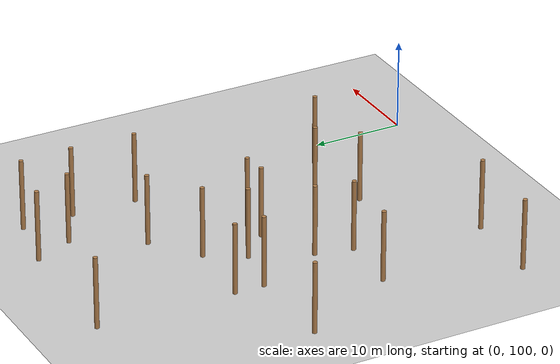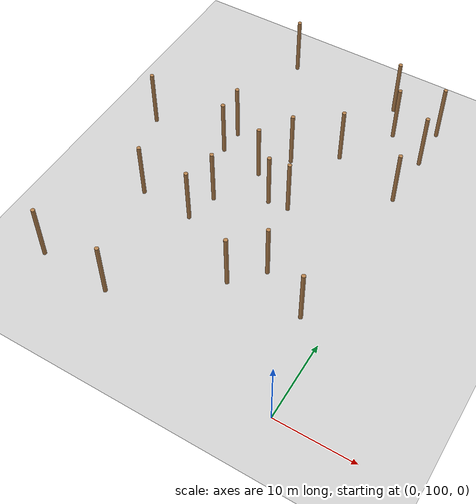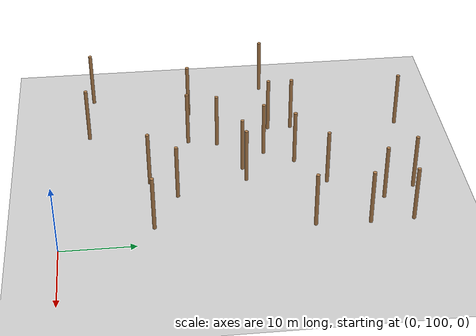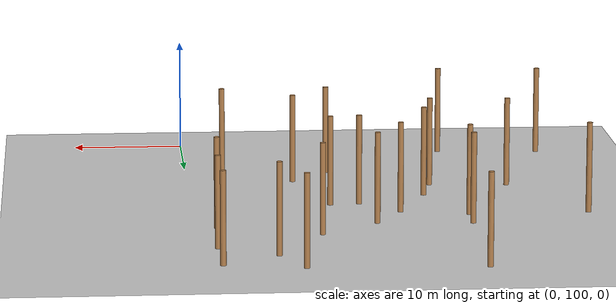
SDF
<sdf version="1.5">
 <world name="padure_tactica">
  <include><uri>model://sun</uri></include>
  <include><uri>model://ground_plane</uri></include>
  <model name="tree_97">
   <static>true</static>
   <pose>-12.92 112.05 4.0 0 0 0</pose>
   <link name="link">
    <collision name="collision">
     <geometry><cylinder><radius>0.25</radius><length>8.0</length></cylinder></geometry>
    </collision>
    <visual name="visual">
     <geometry><cylinder><radius>0.25</radius><length>8.0</length></cylinder></geometry>
     <material>
      <script><uri>file://media/materials/scripts/gazebo.material</uri><name>Gazebo/Wood</name></script>
     </material>
    </visual>
   </link>
  </model>
  <model name="tree_136">
   <static>true</static>
   <pose>-14.92 124.84 4.0 0 0 0</pose>
   <link name="link">
    <collision name="collision">
     <geometry><cylinder><radius>0.25</radius><length>8.0</length></cylinder></geometry>
    </collision>
    <visual name="visual">
     <geometry><cylinder><radius>0.25</radius><length>8.0</length></cylinder></geometry>
     <material>
      <script><uri>file://media/materials/scripts/gazebo.material</uri><name>Gazebo/Wood</name></script>
     </material>
    </visual>
   </link>
  </model>
  <model name="tree_174">
   <static>true</static>
   <pose>-24.19 103.95 4.0 0 0 0</pose>
   <link name="link">
    <collision name="collision">
     <geometry><cylinder><radius>0.25</radius><length>8.0</length></cylinder></geometry>
    </collision>
    <visual name="visual">
     <geometry><cylinder><radius>0.25</radius><length>8.0</length></cylinder></geometry>
     <material>
      <script><uri>file://media/materials/scripts/gazebo.material</uri><name>Gazebo/Wood</name></script>
     </material>
    </visual>
   </link>
  </model>
  <model name="tree_183">
   <static>true</static>
   <pose>-20.97 121.85 4.0 0 0 0</pose>
   <link name="link">
    <collision name="collision">
     <geometry><cylinder><radius>0.25</radius><length>8.0</length></cylinder></geometry>
    </collision>
    <visual name="visual">
     <geometry><cylinder><radius>0.25</radius><length>8.0</length></cylinder></geometry>
     <material>
      <script><uri>file://media/materials/scripts/gazebo.material</uri><name>Gazebo/Wood</name></script>
     </material>
    </visual>
   </link>
  </model>
  <model name="tree_210">
   <static>true</static>
   <pose>-1.75 140.17 4.0 0 0 0</pose>
   <link name="link">
    <collision name="collision">
     <geometry><cylinder><radius>0.25</radius><length>8.0</length></cylinder></geometry>
    </collision>
    <visual name="visual">
     <geometry><cylinder><radius>0.25</radius><length>8.0</length></cylinder></geometry>
     <material>
      <script><uri>file://media/materials/scripts/gazebo.material</uri><name>Gazebo/Wood</name></script>
     </material>
    </visual>
   </link>
  </model>
  <model name="tree_233">
   <static>true</static>
   <pose>-15.89 132.14 4.0 0 0 0</pose>
   <link name="link">
    <collision name="collision">
     <geometry><cylinder><radius>0.25</radius><length>8.0</length></cylinder></geometry>
    </collision>
    <visual name="visual">
     <geometry><cylinder><radius>0.25</radius><length>8.0</length></cylinder></geometry>
     <material>
      <script><uri>file://media/materials/scripts/gazebo.material</uri><name>Gazebo/Wood</name></script>
     </material>
    </visual>
   </link>
  </model>
  <model name="tree_243">
   <static>true</static>
   <pose>-12.35 125.10 4.0 0 0 0</pose>
   <link name="link">
    <collision name="collision">
     <geometry><cylinder><radius>0.25</radius><length>8.0</length></cylinder></geometry>
    </collision>
    <visual name="visual">
     <geometry><cylinder><radius>0.25</radius><length>8.0</length></cylinder></geometry>
     <material>
      <script><uri>file://media/materials/scripts/gazebo.material</uri><name>Gazebo/Wood</name></script>
     </material>
    </visual>
   </link>
  </model>
  <model name="tree_292">
   <static>true</static>
   <pose>-1.99 133.01 4.0 0 0 0</pose>
   <link name="link">
    <collision name="collision">
     <geometry><cylinder><radius>0.25</radius><length>8.0</length></cylinder></geometry>
    </collision>
    <visual name="visual">
     <geometry><cylinder><radius>0.25</radius><length>8.0</length></cylinder></geometry>
     <material>
      <script><uri>file://media/materials/scripts/gazebo.material</uri><name>Gazebo/Wood</name></script>
     </material>
    </visual>
   </link>
  </model>
  <model name="tree_334">
   <static>true</static>
   <pose>-8.71 147.29 4.0 0 0 0</pose>
   <link name="link">
    <collision name="collision">
     <geometry><cylinder><radius>0.25</radius><length>8.0</length></cylinder></geometry>
    </collision>
    <visual name="visual">
     <geometry><cylinder><radius>0.25</radius><length>8.0</length></cylinder></geometry>
     <material>
      <script><uri>file://media/materials/scripts/gazebo.material</uri><name>Gazebo/Wood</name></script>
     </material>
    </visual>
   </link>
  </model>
  <model name="tree_456">
   <static>true</static>
   <pose>-34.70 129.39 4.0 0 0 0</pose>
   <link name="link">
    <collision name="collision">
     <geometry><cylinder><radius>0.25</radius><length>8.0</length></cylinder></geometry>
    </collision>
    <visual name="visual">
     <geometry><cylinder><radius>0.25</radius><length>8.0</length></cylinder></geometry>
     <material>
      <script><uri>file://media/materials/scripts/gazebo.material</uri><name>Gazebo/Wood</name></script>
     </material>
    </visual>
   </link>
  </model>
  <model name="tree_458">
   <static>true</static>
   <pose>-9.66 115.64 4.0 0 0 0</pose>
   <link name="link">
    <collision name="collision">
     <geometry><cylinder><radius>0.25</radius><length>8.0</length></cylinder></geometry>
    </collision>
    <visual name="visual">
     <geometry><cylinder><radius>0.25</radius><length>8.0</length></cylinder></geometry>
     <material>
      <script><uri>file://media/materials/scripts/gazebo.material</uri><name>Gazebo/Wood</name></script>
     </material>
    </visual>
   </link>
  </model>
  <model name="tree_507">
   <static>true</static>
   <pose>-18.29 128.13 4.0 0 0 0</pose>
   <link name="link">
    <collision name="collision">
     <geometry><cylinder><radius>0.25</radius><length>8.0</length></cylinder></geometry>
    </collision>
    <visual name="visual">
     <geometry><cylinder><radius>0.25</radius><length>8.0</length></cylinder></geometry>
     <material>
      <script><uri>file://media/materials/scripts/gazebo.material</uri><name>Gazebo/Wood</name></script>
     </material>
    </visual>
   </link>
  </model>
  <model name="tree_537">
   <static>true</static>
   <pose>-21.92 117.83 4.0 0 0 0</pose>
   <link name="link">
    <collision name="collision">
     <geometry><cylinder><radius>0.25</radius><length>8.0</length></cylinder></geometry>
    </collision>
    <visual name="visual">
     <geometry><cylinder><radius>0.25</radius><length>8.0</length></cylinder></geometry>
     <material>
      <script><uri>file://media/materials/scripts/gazebo.material</uri><name>Gazebo/Wood</name></script>
     </material>
    </visual>
   </link>
  </model>
  <model name="tree_572">
   <static>true</static>
   <pose>-23.73 147.91 4.0 0 0 0</pose>
   <link name="link">
    <collision name="collision">
     <geometry><cylinder><radius>0.25</radius><length>8.0</length></cylinder></geometry>
    </collision>
    <visual name="visual">
     <geometry><cylinder><radius>0.25</radius><length>8.0</length></cylinder></geometry>
     <material>
      <script><uri>file://media/materials/scripts/gazebo.material</uri><name>Gazebo/Wood</name></script>
     </material>
    </visual>
   </link>
  </model>
  <model name="tree_778">
   <static>true</static>
   <pose>-24.20 129.46 4.0 0 0 0</pose>
   <link name="link">
    <collision name="collision">
     <geometry><cylinder><radius>0.25</radius><length>8.0</length></cylinder></geometry>
    </collision>
    <visual name="visual">
     <geometry><cylinder><radius>0.25</radius><length>8.0</length></cylinder></geometry>
     <material>
      <script><uri>file://media/materials/scripts/gazebo.material</uri><name>Gazebo/Wood</name></script>
     </material>
    </visual>
   </link>
  </model>
  <model name="tree_816">
   <static>true</static>
   <pose>-6.73 142.96 4.0 0 0 0</pose>
   <link name="link">
    <collision name="collision">
     <geometry><cylinder><radius>0.25</radius><length>8.0</length></cylinder></geometry>
    </collision>
    <visual name="visual">
     <geometry><cylinder><radius>0.25</radius><length>8.0</length></cylinder></geometry>
     <material>
      <script><uri>file://media/materials/scripts/gazebo.material</uri><name>Gazebo/Wood</name></script>
     </material>
    </visual>
   </link>
  </model>
  <model name="tree_821">
   <static>true</static>
   <pose>-1.92 145.91 4.0 0 0 0</pose>
   <link name="link">
    <collision name="collision">
     <geometry><cylinder><radius>0.25</radius><length>8.0</length></cylinder></geometry>
    </collision>
    <visual name="visual">
     <geometry><cylinder><radius>0.25</radius><length>8.0</length></cylinder></geometry>
     <material>
      <script><uri>file://media/materials/scripts/gazebo.material</uri><name>Gazebo/Wood</name></script>
     </material>
    </visual>
   </link>
  </model>
  <model name="tree_829">
   <static>true</static>
   <pose>-24.15 132.71 4.0 0 0 0</pose>
   <link name="link">
    <collision name="collision">
     <geometry><cylinder><radius>0.25</radius><length>8.0</length></cylinder></geometry>
    </collision>
    <visual name="visual">
     <geometry><cylinder><radius>0.25</radius><length>8.0</length></cylinder></geometry>
     <material>
      <script><uri>file://media/materials/scripts/gazebo.material</uri><name>Gazebo/Wood</name></script>
     </material>
    </visual>
   </link>
  </model>
  <model name="tree_884">
   <static>true</static>
   <pose>-33.47 104.56 4.0 0 0 0</pose>
   <link name="link">
    <collision name="collision">
     <geometry><cylinder><radius>0.25</radius><length>8.0</length></cylinder></geometry>
    </collision>
    <visual name="visual">
     <geometry><cylinder><radius>0.25</radius><length>8.0</length></cylinder></geometry>
     <material>
      <script><uri>file://media/materials/scripts/gazebo.material</uri><name>Gazebo/Wood</name></script>
     </material>
    </visual>
   </link>
  </model>
  <model name="tree_891">
   <static>true</static>
   <pose>-28.89 118.33 4.0 0 0 0</pose>
   <link name="link">
    <collision name="collision">
     <geometry><cylinder><radius>0.25</radius><length>8.0</length></cylinder></geometry>
    </collision>
    <visual name="visual">
     <geometry><cylinder><radius>0.25</radius><length>8.0</length></cylinder></geometry>
     <material>
      <script><uri>file://media/materials/scripts/gazebo.material</uri><name>Gazebo/Wood</name></script>
     </material>
    </visual>
   </link>
  </model>
  <model name="tree_911">
   <static>true</static>
   <pose>-10.87 135.91 4.0 0 0 0</pose>
   <link name="link">
    <collision name="collision">
     <geometry><cylinder><radius>0.25</radius><length>8.0</length></cylinder></geometry>
    </collision>
    <visual name="visual">
     <geometry><cylinder><radius>0.25</radius><length>8.0</length></cylinder></geometry>
     <material>
      <script><uri>file://media/materials/scripts/gazebo.material</uri><name>Gazebo/Wood</name></script>
     </material>
    </visual>
   </link>
  </model>
  <model name="tree_1109">
   <static>true</static>
   <pose>-3.39 112.24 4.0 0 0 0</pose>
   <link name="link">
    <collision name="collision">
     <geometry><cylinder><radius>0.25</radius><length>8.0</length></cylinder></geometry>
    </collision>
    <visual name="visual">
     <geometry><cylinder><radius>0.25</radius><length>8.0</length></cylinder></geometry>
     <material>
      <script><uri>file://media/materials/scripts/gazebo.material</uri><name>Gazebo/Wood</name></script>
     </material>
    </visual>
   </link>
  </model>
 </world>
</sdf>
